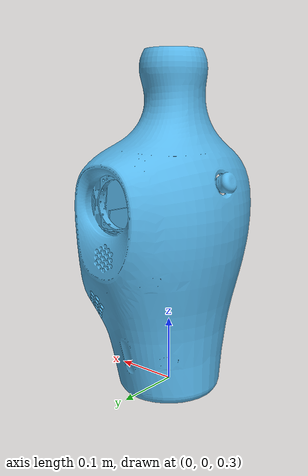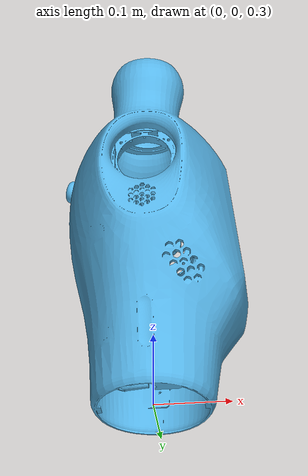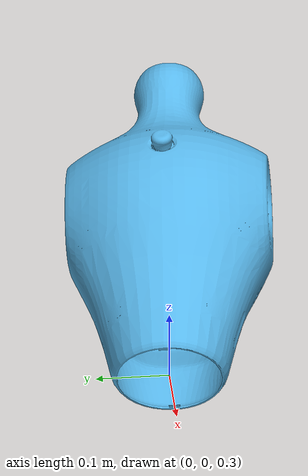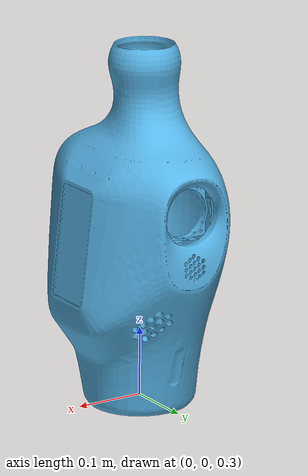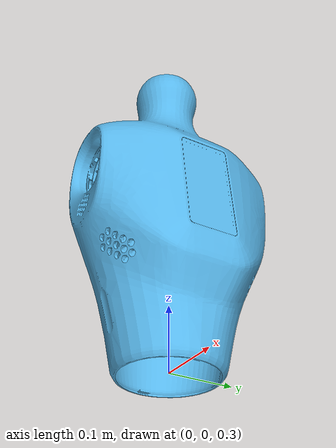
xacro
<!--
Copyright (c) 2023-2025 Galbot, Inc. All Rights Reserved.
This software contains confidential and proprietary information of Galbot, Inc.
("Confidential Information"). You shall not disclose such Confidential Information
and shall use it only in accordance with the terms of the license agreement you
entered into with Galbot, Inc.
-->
<?xml version="1.0"?>

<robot name="test_torso" xmlns:xacro="http://ros.org/wiki/xacro">
    <!-- Include-->
    <xacro:include filename="$(find galbot_description)/urdf/galbot_one_charlie/torso/torso.xacro" />
    <!-- Properties -->
    <xacro:property name="M_PI" value="3.1415926535897931" />
    <!-- Parent link -->
    <link name="base_link" />
    <xacro:torso parent="base_link" name="torso">
        <origin xyz="0 0 0.2" rpy="0 0 0" />
    </xacro:torso>
</robot>

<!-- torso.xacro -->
<robot name="torso"
    xmlns:xacro="http://ros.org/wiki/xacro">
    <xacro:macro name="torso" params="parent *origin name:=torso">
        <xacro:property name="M_PI" value="3.1415926535897931" />

        <joint name="${name}_joint" type="fixed">
            <xacro:insert_block name="origin" />
            <parent link="${parent}" />
            <child link="${name}_base_link" />
        </joint>

        <link name="${name}_base_link">
            <inertial>
                <origin rpy="0 0 0" xyz="0.00004 0.00011 0.32719" />
                <mass value="6.68" />
                <inertia ixx="0.87119" ixy="0.00009" ixz="-0.00496" iyy="0.85457" iyz="0.00295"
                    izz="0.06560" />
            </inertial>
            <visual>
                <origin rpy="0 0 0" xyz="0 0 0" />
                <geometry>
                    <mesh
                        filename="package://galbot_one_charlie_description/meshes/torso/torso_base_link.obj" />
                </geometry>

            </visual>
            <collision>
                <origin rpy="0 0 0" xyz="0 0 0" />
                <geometry>
                    <mesh
                        filename="package://galbot_one_charlie_description/meshes/torso/torso_base_link.stl" />
                </geometry>
            </collision>

        </link>

        <!-- Head Mount -->
        <link name="${name}_head_mount_link">
            <inertial>
                <origin xyz="0 0 0" rpy="0 0 0" />
                <mass value="0" />
                <inertia ixx="0" ixy="0" ixz="0" iyy="0" iyz="0" izz="0" />
            </inertial>
        </link>
        <joint name="${name}_head_mount_joint" type="fixed">
            <origin xyz="-0.0081669 5E-05 0.58394" rpy="0 0 0" />
            <parent link="${name}_base_link" />
            <child link="${name}_head_mount_link" />
            <axis xyz="0 0 0" />
        </joint>

        <!-- Right Arm Mount -->
        <link name="${name}_right_arm_mount_link">
            <inertial>
                <origin xyz="0 0 0" rpy="0 0 0" />
                <mass value="0" />
                <inertia ixx="0" ixy="0" ixz="0" iyy="0" iyz="0" izz="0" />
            </inertial>
        </link>
        <joint name="${name}_right_arm_mount_joint" type="fixed">
            <origin rpy="${-M_PI/2} 0 ${M_PI}" xyz="0 -0.206 0.39599" />
            <parent link="${name}_base_link" />
            <child link="${name}_right_arm_mount_link" />
            <axis xyz="0 0 0" />
        </joint>

        <!-- Left Arm Mount -->
        <link name="${name}_left_arm_mount_link">
            <inertial>
                <origin xyz="0 0 0" rpy="0 0 0" />
                <mass value="0" />
                <inertia ixx="0" ixy="0" ixz="0" iyy="0" iyz="0" izz="0" />
            </inertial>
        </link>
        <joint name="${name}_left_arm_mount_joint" type="fixed">
            <origin rpy="${M_PI/2} 0 ${M_PI}" xyz="0 0.206 0.39599" />
            <parent link="${name}_base_link" />
            <child link="${name}_left_arm_mount_link" />
            <axis xyz="0 0 0" />
        </joint>

    </xacro:macro>
</robot>
